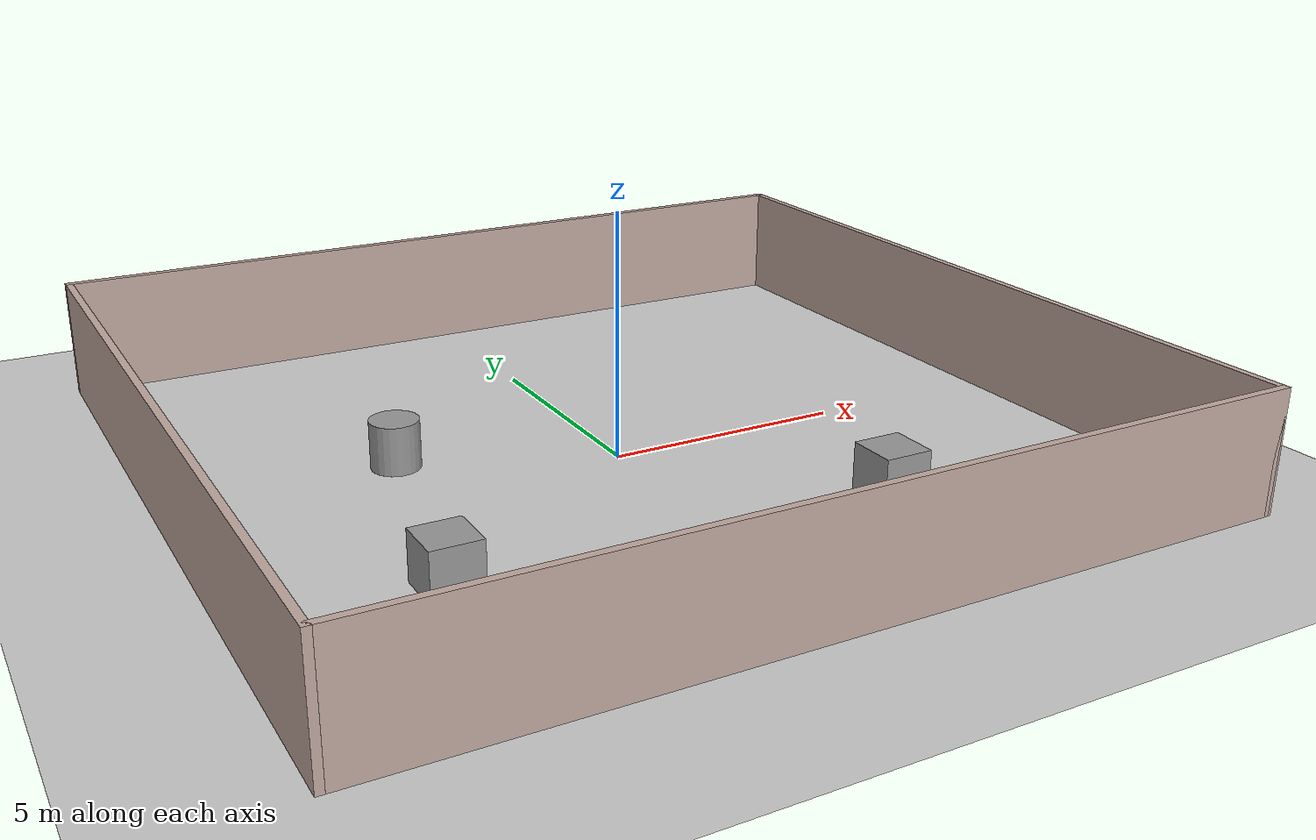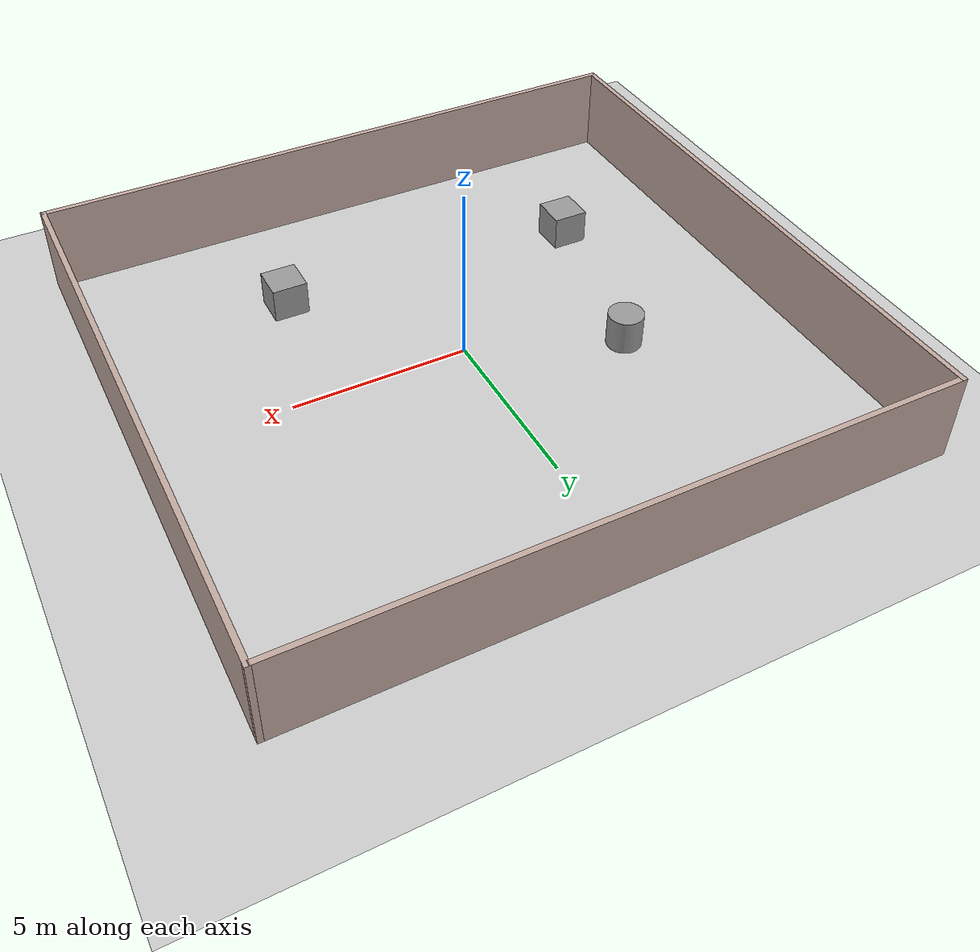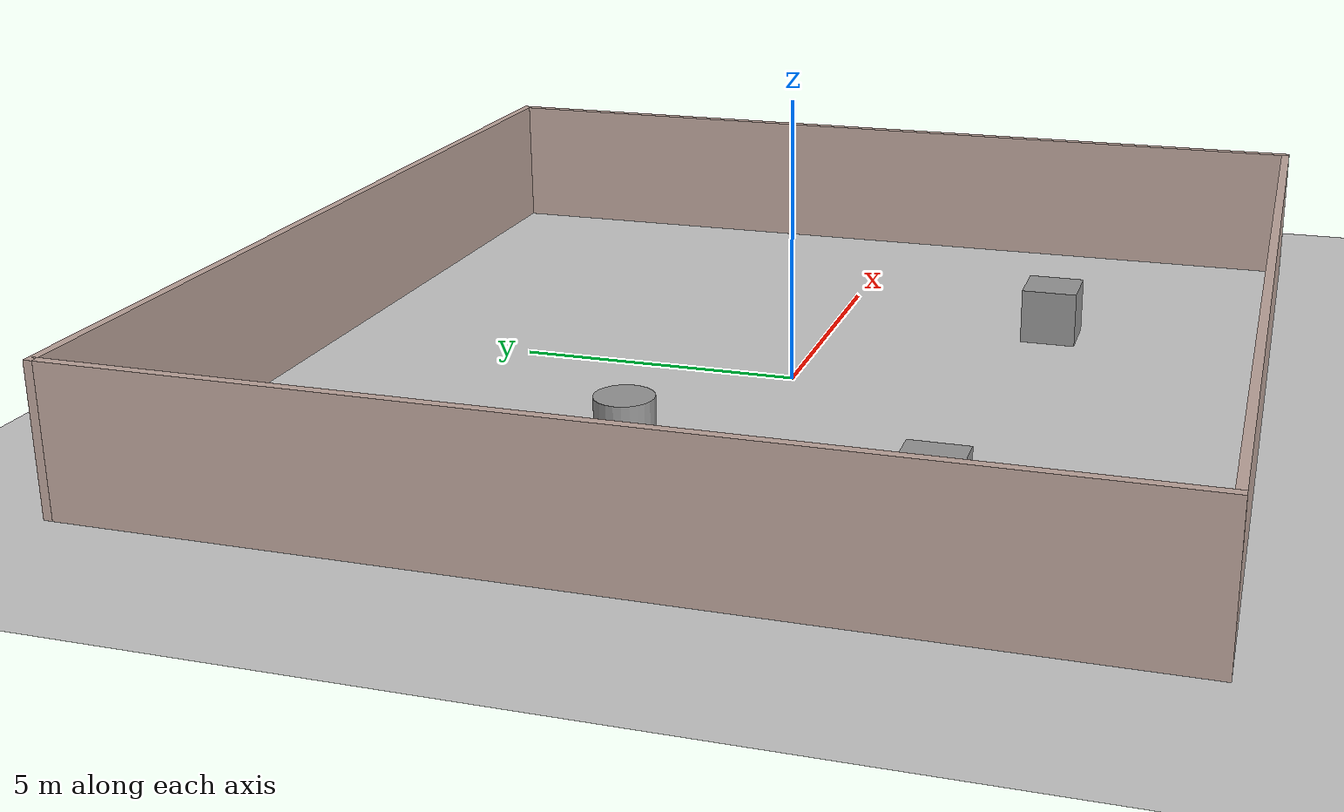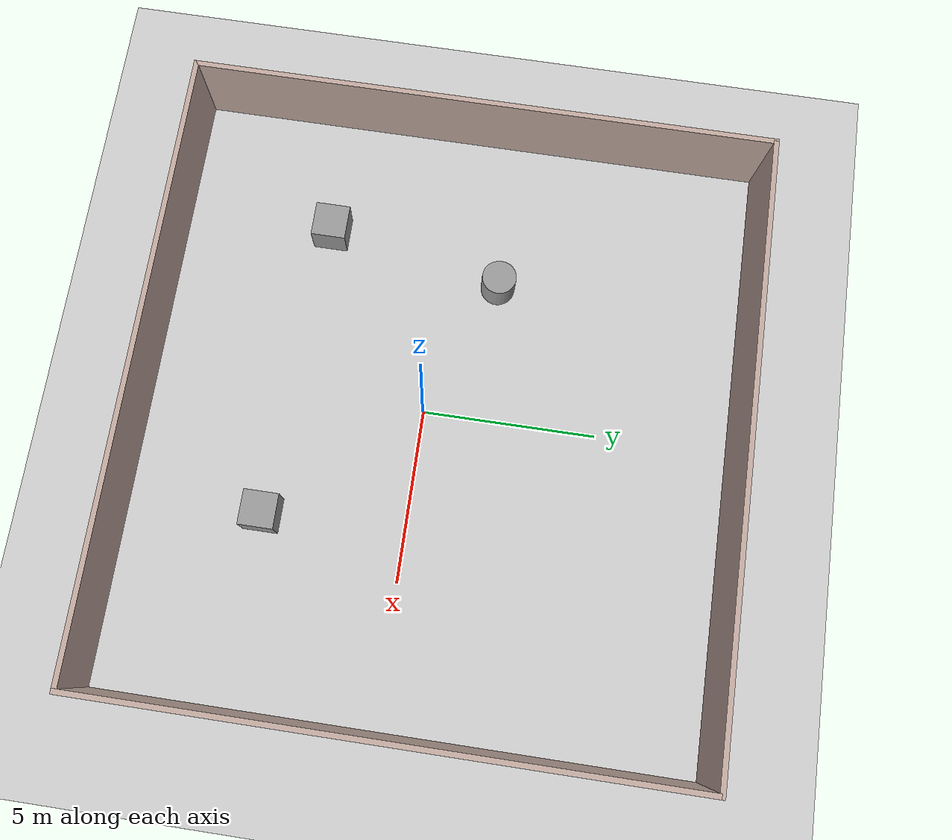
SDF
<sdf version="1.7">
 <world name="default">
  <light name="sun" type="directional">
   <pose>0 0 10 0 -0 0</pose>
   <diffuse>0.8 0.8 0.8 1</diffuse>
   <specular>0.2 0.2 0.2 1</specular>
   <attenuation>
    <range>1000</range>
    <constant>0.9</constant>
    <linear>0.01</linear>
    <quadratic>0.001</quadratic>
   </attenuation>
   <direction>-0.5 0.1 -0.9</direction>
   <spot><inner_angle>0</inner_angle><outer_angle>0</outer_angle><falloff>0</falloff></spot>
  </light>
  <model name="ground_plane">
   <static>1</static>
   <link name="link">
    <collision name="collision">
     <geometry><plane><normal>0 0 1</normal><size>100 100</size></plane></geometry>
     <surface>
      <contact><collide_bitmask>65535</collide_bitmask></contact>
      <friction><ode><mu>100</mu><mu2>50</mu2></ode></friction>
     </surface>
    </collision>
    <visual name="visual">
     <cast_shadows>0</cast_shadows>
     <geometry><plane><normal>0 0 1</normal><size>100 100</size></plane></geometry>
     <material>
      <script><uri>file://media/materials/scripts/gazebo.material</uri><name>Gazebo/Grey</name></script>
     </material>
    </visual>
   </link>
  </model>
  <gravity>0 0 -9.8</gravity>
  <magnetic_field>6e-06 2.3e-05 -4.2e-05</magnetic_field>
  <atmosphere type="adiabatic"/>
  <physics type="ode">
   <max_step_size>0.001</max_step_size>
   <real_time_factor>1</real_time_factor>
   <real_time_update_rate>1000</real_time_update_rate>
  </physics>
  <scene><ambient>0.4 0.4 0.4 1</ambient><background>0.7 0.7 0.7 1</background><shadows>1</shadows></scene>
  <spherical_coordinates>
   <surface_model>EARTH_WGS84</surface_model>
   <latitude_deg>0</latitude_deg>
   <longitude_deg>0</longitude_deg>
   <elevation>0</elevation>
   <heading_deg>0</heading_deg>
  </spherical_coordinates>
  <model name="Untitled">
   <pose>0.181116 0.439129 0 0 -0 0</pose>
   <link name="Wall_12">
    <collision name="Wall_12_Collision">
     <geometry><box><size>17 0.15 2.5</size></box></geometry>
     <pose>0 0 1.25 0 -0 0</pose>
    </collision>
    <visual name="Wall_12_Visual">
     <pose>0 0 1.25 0 -0 0</pose>
     <geometry><box><size>17 0.15 2.5</size></box></geometry>
     <material>
      <script><uri>file://media/materials/scripts/gazebo.material</uri><name>Gazebo/Grey</name></script>
      <ambient>0.760784 0.662745 0.627451 1</ambient>
     </material>
     <meta><layer>0</layer></meta>
    </visual>
    <pose>8.925 0 0 0 -0 1.5708</pose>
   </link>
   <link name="Wall_14">
    <collision name="Wall_14_Collision">
     <geometry><box><size>18 0.15 2.5</size></box></geometry>
     <pose>0 0 1.25 0 -0 0</pose>
    </collision>
    <visual name="Wall_14_Visual">
     <pose>0 0 1.25 0 -0 0</pose>
     <geometry><box><size>18 0.15 2.5</size></box></geometry>
     <material>
      <script><uri>file://media/materials/scripts/gazebo.material</uri><name>Gazebo/Grey</name></script>
      <ambient>0.760784 0.662745 0.627451 1</ambient>
     </material>
     <meta><layer>0</layer></meta>
    </visual>
    <pose>-0 8.425 0 0 -0 3.14159</pose>
   </link>
   <link name="Wall_15">
    <collision name="Wall_15_Collision">
     <geometry><box><size>17 0.15 2.5</size></box></geometry>
     <pose>0 0 1.25 0 -0 0</pose>
    </collision>
    <visual name="Wall_15_Visual">
     <pose>0 0 1.25 0 -0 0</pose>
     <geometry><box><size>17 0.15 2.5</size></box></geometry>
     <material>
      <script><uri>file://media/materials/scripts/gazebo.material</uri><name>Gazebo/Grey</name></script>
      <ambient>0.760784 0.662745 0.627451 1</ambient>
     </material>
     <meta><layer>0</layer></meta>
    </visual>
    <pose>-8.925 0 0 0 -0 -1.5708</pose>
   </link>
   <link name="Wall_17">
    <collision name="Wall_17_Collision">
     <geometry><box><size>18 0.15 2.5</size></box></geometry>
     <pose>0 0 1.25 0 -0 0</pose>
    </collision>
    <visual name="Wall_17_Visual">
     <pose>0 0 1.25 0 -0 0</pose>
     <geometry><box><size>18 0.15 2.5</size></box></geometry>
     <material>
      <script><uri>file://media/materials/scripts/gazebo.material</uri><name>Gazebo/Grey</name></script>
      <ambient>0.760784 0.662745 0.627451 1</ambient>
     </material>
     <meta><layer>0</layer></meta>
    </visual>
    <pose>-0 -8.425 0 0 -0 0</pose>
   </link>
   <static>1</static>
  </model>
  <model name="unit_box">
   <pose>-5.10649 -3.54759 0.499995 0 1e-05 0</pose>
   <link name="link">
    <inertial>
     <mass>1</mass>
     <inertia>
      <ixx>0.166667</ixx>
      <ixy>0</ixy>
      <ixz>0</ixz>
      <iyy>0.166667</iyy>
      <iyz>0</iyz>
      <izz>0.166667</izz>
     </inertia>
    </inertial>
    <collision name="collision"><geometry><box><size>1 1 1</size></box></geometry></collision>
    <visual name="visual">
     <geometry><box><size>1 1 1</size></box></geometry>
     <material>
      <script><name>Gazebo/Grey</name><uri>file://media/materials/scripts/gazebo.material</uri></script>
     </material>
    </visual>
   </link>
  </model>
  <model name="unit_box_0">
   <pose>3.62516 -4.05478 0.499995 -1e-05 -0 0</pose>
   <link name="link">
    <inertial>
     <mass>1</mass>
     <inertia>
      <ixx>0.166667</ixx>
      <ixy>0</ixy>
      <ixz>0</ixz>
      <iyy>0.166667</iyy>
      <iyz>0</iyz>
      <izz>0.166667</izz>
     </inertia>
    </inertial>
    <collision name="collision"><geometry><box><size>1 1 1</size></box></geometry></collision>
    <visual name="visual">
     <geometry><box><size>1 1 1</size></box></geometry>
     <material>
      <script><name>Gazebo/Grey</name><uri>file://media/materials/scripts/gazebo.material</uri></script>
     </material>
    </visual>
   </link>
  </model>
  <model name="unit_cylinder">
   <pose>-4.07676 1.61604 0.499997 3e-06 4e-06 -0</pose>
   <link name="link">
    <inertial>
     <mass>1</mass>
     <inertia><ixx>0.145833</ixx><ixy>0</ixy><ixz>0</ixz><iyy>0.145833</iyy><iyz>0</iyz><izz>0.125</izz></inertia>
    </inertial>
    <collision name="collision">
     <geometry><cylinder><radius>0.5</radius><length>1</length></cylinder></geometry>
    </collision>
    <visual name="visual">
     <geometry><cylinder><radius>0.5</radius><length>1</length></cylinder></geometry>
     <material>
      <script><name>Gazebo/Grey</name><uri>file://media/materials/scripts/gazebo.material</uri></script>
     </material>
    </visual>
   </link>
  </model>
 </world>
</sdf>
